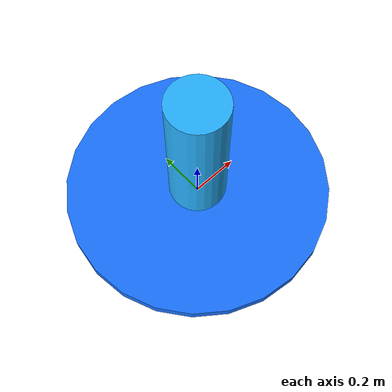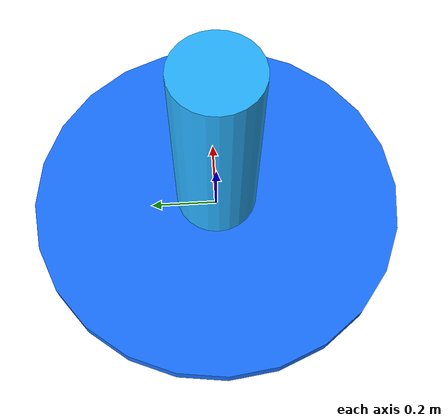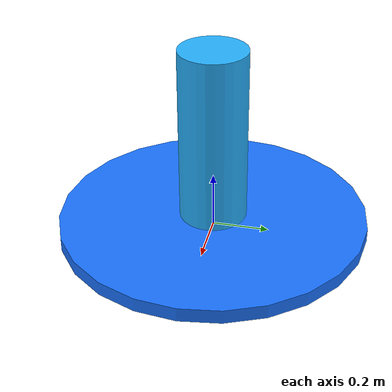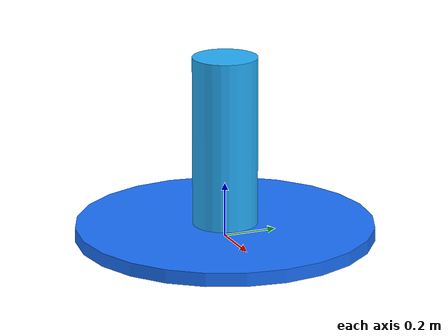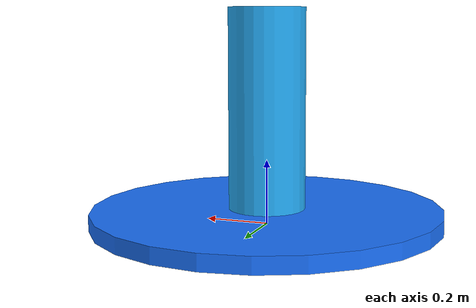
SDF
<?xml version="1.0"?>
<sdf version="1.7">
  <model name="waypoint_marker">
    <static>true</static>
    <link name="waypoint_link">
      <visual name="waypoint_disc">
        <pose>0 0 0.025 0 0 0</pose>
        <geometry><cylinder><radius>0.55</radius><length>0.05</length></cylinder></geometry>
        <material>
          <ambient>0.05 0.25 0.80 1</ambient>
          <diffuse>0.10 0.45 1.00 1</diffuse>
          <emissive>0.02 0.08 0.22 1</emissive>
        </material>
      </visual>
      <visual name="waypoint_beacon">
        <pose>0 0 0.35 0 0 0</pose>
        <geometry><cylinder><radius>0.12</radius><length>0.65</length></cylinder></geometry>
        <material>
          <ambient>0.10 0.55 1.00 1</ambient>
          <diffuse>0.15 0.70 1.00 1</diffuse>
          <emissive>0.04 0.18 0.35 1</emissive>
        </material>
      </visual>
    </link>
  </model>
</sdf>
